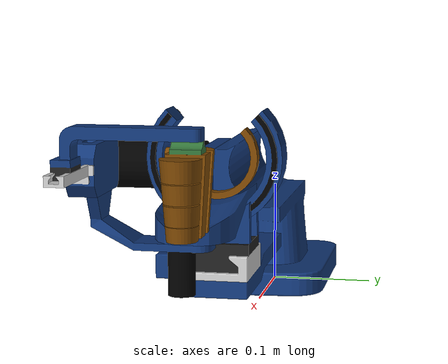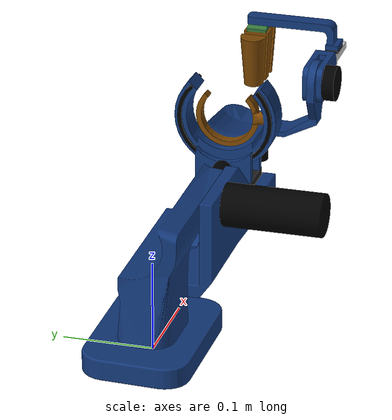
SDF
<?xml version="1.0" ?>
<sdf version="1.6">
	<model name="ForearmRehabSimplified">
		<pose>0.0 0.0 0.0 0.0 0.0 0.0</pose>
		<link name="DummyBase">
			<gravity>false</gravity>
			<self_collide>false</self_collide>
			<pose>0.0 0.0 0.0 0.0 -0.0 0.0</pose>
			<inertial>
				<mass>1.0</mass>
				<inertia>
					<ixx>1.0</ixx>
					<ixy>0.0</ixy>
					<ixz>0.0</ixz>
					<iyy>1.0</iyy>
					<iyz>0.0</iyz>
					<izz>1.0</izz>
				</inertia>
				<pose>0 0 0 0 0 0</pose>
			</inertial>
		</link>
		<link name="BaseLink">
			<gravity>true</gravity>
			<self_collide>true</self_collide>
			<pose>0.0 0.0 0.0 0.0 -0.0 0.0</pose>
			<inertial>
				<mass>1.0</mass>
				<inertia>
					<ixx>1.0</ixx>
					<ixy>0.0</ixy>
					<ixz>0.0</ixz>
					<iyy>1.0</iyy>
					<iyz>0.0</iyz>
					<izz>1.0</izz>
				</inertia>
				<pose>0 0 0 0 0 0</pose>
			</inertial>
			<visual name="VIS_BaseLink">
				<pose>0.0 0.0 0.0 0.0 -0.0 0.0</pose>
				<geometry>
					<mesh>
						<uri>model://ForearmRehabSimplified/meshes/visual/VIS_BaseLink.dae</uri>
						<scale>1.0 1.0 1.0</scale>
					</mesh>
				</geometry>
			</visual>
		</link>
		<link name="ElbowWristLink">
			<gravity>true</gravity>
			<self_collide>true</self_collide>
			<pose>0.09929899871349335 -0.03790295124053955 0.13185299932956696 0.0 -0.0 0.0</pose>
			<inertial>
				<mass>1.0</mass>
				<inertia>
					<ixx>1.0</ixx>
					<ixy>0.0</ixy>
					<ixz>0.0</ixz>
					<iyy>1.0</iyy>
					<iyz>0.0</iyz>
					<izz>1.0</izz>
				</inertia>
				<pose>0 0 0 0 0 0</pose>
			</inertial>
			<visual name="VIS_ElbowWristLink">
				<pose>4.3213367462158203e-07 3.5762786865234375e-07 -1.4901161193847656e-08 0.0 -0.0 0.0</pose>
				<geometry>
					<mesh>
						<uri>model://ForearmRehabSimplified/meshes/visual/VIS_ElbowWristLink.dae</uri>
						<scale>1.0 1.0 1.0</scale>
					</mesh>
				</geometry>
			</visual>
		</link>
		<link name="Prism1MidSlider">
			<gravity>true</gravity>
			<self_collide>true</self_collide>
			<pose>0.2650749981403351 -0.009253978729248047 0.06786900013685226 0.0 -0.0 0.0</pose>
			<inertial>
				<mass>1.0</mass>
				<inertia>
					<ixx>1.0</ixx>
					<ixy>0.0</ixy>
					<ixz>0.0</ixz>
					<iyy>1.0</iyy>
					<iyz>0.0</iyz>
					<izz>1.0</izz>
				</inertia>
				<pose>0 0 0 0 0 0</pose>
			</inertial>
			<visual name="VIS_Prism1MidSlider">
				<pose>-1.1920928955078125e-07 4.470348358154297e-07 6.705522537231445e-08 2.117582368135751e-22 -0.0 3.552713678800501e-15</pose>
				<geometry>
					<mesh>
						<uri>model://ForearmRehabSimplified/meshes/visual/VIS_Prism1MidSlider.dae</uri>
						<scale>1.0 1.0 1.0</scale>
					</mesh>
				</geometry>
			</visual>
		</link>
		<link name="WristLink1">
			<gravity>true</gravity>
			<self_collide>true</self_collide>
			<pose>0.2647170126438141 -0.009253978729248047 0.16250300407409668 0.0 -0.0 0.0</pose>
			<inertial>
				<mass>1.0</mass>
				<inertia>
					<ixx>1.0</ixx>
					<ixy>0.0</ixy>
					<ixz>0.0</ixz>
					<iyy>1.0</iyy>
					<iyz>0.0</iyz>
					<izz>1.0</izz>
				</inertia>
				<pose>0 0 0 0 0 0</pose>
			</inertial>
			<visual name="VIS_WristLink1">
				<pose>-2.9802322387695312e-08 4.3213367462158203e-07 -4.76837158203125e-07 2.117582368135751e-22 -0.0 3.552713678800501e-15</pose>
				<geometry>
					<mesh>
						<uri>model://ForearmRehabSimplified/meshes/visual/VIS_WristLink1.dae</uri>
						<scale>1.0 1.0 1.0</scale>
					</mesh>
				</geometry>
			</visual>
		</link>
		<link name="WristLink2">
			<gravity>true</gravity>
			<self_collide>true</self_collide>
			<pose>0.36778801679611206 -0.016865015029907227 0.10667700320482254 0.0 -0.0 0.0</pose>
			<inertial>
				<mass>1.0</mass>
				<inertia>
					<ixx>1.0</ixx>
					<ixy>0.0</ixy>
					<ixz>0.0</ixz>
					<iyy>1.0</iyy>
					<iyz>0.0</iyz>
					<izz>1.0</izz>
				</inertia>
				<pose>0 0 0 0 0 0</pose>
			</inertial>
			<visual name="VIS_WristLink2">
				<pose>-2.9802322387695312e-08 2.682209014892578e-07 5.21540641784668e-08 2.117582368135751e-22 -0.0 3.552713678800501e-15</pose>
				<geometry>
					<mesh>
						<uri>model://ForearmRehabSimplified/meshes/visual/VIS_WristLink2.dae</uri>
						<scale>1.0 1.0 1.0</scale>
					</mesh>
				</geometry>
			</visual>
		</link>
		<link name="HandLink">
			<gravity>true</gravity>
			<self_collide>true</self_collide>
			<pose>0.3686010241508484 -0.08284497261047363 0.1690009981393814 0.0 -0.0 0.0</pose>
			<inertial>
				<mass>1.0</mass>
				<inertia>
					<ixx>1.0</ixx>
					<ixy>0.0</ixy>
					<ixz>0.0</ixz>
					<iyy>1.0</iyy>
					<iyz>0.0</iyz>
					<izz>1.0</izz>
				</inertia>
				<pose>0 0 0 0 0 0</pose>
			</inertial>
			<visual name="VIS_HandLink">
				<pose>2.9802322387695312e-08 -2.682209014892578e-07 1.6391277313232422e-07 -1.2621775988168958e-29 -0.0 2.117582368135751e-22</pose>
				<geometry>
					<mesh>
						<uri>model://ForearmRehabSimplified/meshes/visual/VIS_HandLink.dae</uri>
						<scale>1.1748089790344238 1.0 1.6057640314102173</scale>
					</mesh>
				</geometry>
			</visual>
		</link>
		<link name="Prism2MidSlider">
			<gravity>true</gravity>
			<self_collide>true</self_collide>
			<pose>0.45214101672172546 -0.08284497261047363 0.1690009981393814 0.0 -0.0 0.0</pose>
			<inertial>
				<mass>1.0</mass>
				<inertia>
					<ixx>1.0</ixx>
					<ixy>0.0</ixy>
					<ixz>0.0</ixz>
					<iyy>1.0</iyy>
					<iyz>0.0</iyz>
					<izz>1.0</izz>
				</inertia>
				<pose>0 0 0 0 0 0</pose>
			</inertial>
			<visual name="VIS_Prism2MidSlider">
				<pose>3.5762786865234375e-07 -2.682209014892578e-07 -7.450580596923828e-08 0.0 -0.0 0.0</pose>
				<geometry>
					<mesh>
						<uri>model://ForearmRehabSimplified/meshes/visual/VIS_Prism2MidSlider.dae</uri>
						<scale>1.0 1.0 1.0</scale>
					</mesh>
				</geometry>
			</visual>
		</link>
		<link name="HandInterface">
			<gravity>true</gravity>
			<self_collide>true</self_collide>
			<pose>0.452210009098053 0.007309019565582275 0.15981200337409973 0.0 -0.0 0.0</pose>
			<inertial>
				<mass>1.0</mass>
				<inertia>
					<ixx>1.0</ixx>
					<ixy>0.0</ixy>
					<ixz>0.0</ixz>
					<iyy>1.0</iyy>
					<iyz>0.0</iyz>
					<izz>1.0</izz>
				</inertia>
				<pose>0 0 0 0 0 0</pose>
			</inertial>
			<visual name="VIS_HandInterface">
				<pose>-8.940696716308594e-08 -6.92903995513916e-07 -5.364418029785156e-07 0.0 -0.0 0.0</pose>
				<geometry>
					<mesh>
						<uri>model://ForearmRehabSimplified/meshes/visual/VIS_HandInterface.dae</uri>
						<scale>1.0 1.0 1.0</scale>
					</mesh>
				</geometry>
			</visual>
		</link>
		<joint name="BaseLink_joint" type="fixed">
			<parent>DummyBase</parent>
			<child>BaseLink</child>
			<axis>
				<xyz>0.0 0.0 1.0</xyz>
				<dynamics>
					<damping>0.0</damping>
					<friction>0.0</friction>
					<spring_reference>0.0</spring_reference>
					<spring_stiffness>0.0</spring_stiffness>
				</dynamics>
			</axis>
			<physics>
				<ode>
					<cfm_damping>false</cfm_damping>
					<implicit_spring_damper>false</implicit_spring_damper>
					<cfm>0.0</cfm>
					<erp>0.20000000298023224</erp>
				</ode>
			</physics>
		</joint>
		<joint name="ElbowWristLink_joint" type="revolute">
			<parent>BaseLink</parent>
			<child>ElbowWristLink</child>
			<axis>
				<xyz>0.0 1.0 0.0</xyz>
				<dynamics>
					<damping>0.0</damping>
					<friction>0.0</friction>
					<spring_reference>0.0</spring_reference>
					<spring_stiffness>0.0</spring_stiffness>
				</dynamics>
				<limit>
					<lower>-1.5707963267948966</lower>
					<upper>0.0</upper>
				</limit>
			</axis>
			<physics>
				<ode>
					<cfm_damping>false</cfm_damping>
					<implicit_spring_damper>false</implicit_spring_damper>
					<cfm>0.0</cfm>
					<erp>0.20000000298023224</erp>
				</ode>
			</physics>
		</joint>
		<joint name="Prism1MidSlider_joint" type="revolute">
			<parent>ElbowWristLink</parent>
			<child>Prism1MidSlider</child>
			<axis>
				<xyz>1.0 0.0 0.0</xyz>
				<dynamics>
					<damping>0.0</damping>
					<friction>0.0</friction>
					<spring_reference>0.0</spring_reference>
					<spring_stiffness>0.0</spring_stiffness>
				</dynamics>
				<limit>
					<lower>-1.7453292079036042e-06</lower>
					<upper>1.7453292079036042e-06</upper>
				</limit>
			</axis>
			<physics>
				<ode>
					<cfm_damping>false</cfm_damping>
					<implicit_spring_damper>false</implicit_spring_damper>
					<cfm>0.0</cfm>
					<erp>0.20000000298023224</erp>
				</ode>
			</physics>
		</joint>
		<joint name="WristLink1_joint" type="revolute">
			<parent>Prism1MidSlider</parent>
			<child>WristLink1</child>
			<axis>
				<xyz>1.0 0.0 0.0</xyz>
				<dynamics>
					<damping>0.0</damping>
					<friction>0.0</friction>
					<spring_reference>0.0</spring_reference>
					<spring_stiffness>0.0</spring_stiffness>
				</dynamics>
				<limit>
					<lower>-1.9198621771937625</lower>
					<upper>1.9198621771937625</upper>
				</limit>
			</axis>
			<physics>
				<ode>
					<cfm_damping>false</cfm_damping>
					<implicit_spring_damper>false</implicit_spring_damper>
					<cfm>0.0</cfm>
					<erp>0.20000000298023224</erp>
				</ode>
			</physics>
		</joint>
		<joint name="WristLink2_joint" type="revolute">
			<parent>WristLink1</parent>
			<child>WristLink2</child>
			<axis>
				<xyz>0.0 0.0 1.0</xyz>
				<dynamics>
					<damping>0.0</damping>
					<friction>0.0</friction>
					<spring_reference>0.0</spring_reference>
					<spring_stiffness>0.0</spring_stiffness>
				</dynamics>
				<limit>
					<lower>-0.9599310885968813</lower>
					<upper>2.0943951023931953</upper>
				</limit>
			</axis>
			<physics>
				<ode>
					<cfm_damping>false</cfm_damping>
					<implicit_spring_damper>false</implicit_spring_damper>
					<cfm>0.0</cfm>
					<erp>0.20000000298023224</erp>
				</ode>
			</physics>
		</joint>
		<joint name="HandLink_joint" type="revolute">
			<parent>WristLink2</parent>
			<child>HandLink</child>
			<axis>
				<xyz>0.0 1.0 0.0</xyz>
				<dynamics>
					<damping>0.0</damping>
					<friction>0.0</friction>
					<spring_reference>0.0</spring_reference>
					<spring_stiffness>0.0</spring_stiffness>
				</dynamics>
				<limit>
					<lower>-1.0471975511965976</lower>
					<upper>0.5235987755982988</upper>
				</limit>
			</axis>
			<physics>
				<ode>
					<cfm_damping>false</cfm_damping>
					<implicit_spring_damper>false</implicit_spring_damper>
					<cfm>0.0</cfm>
					<erp>0.20000000298023224</erp>
				</ode>
			</physics>
		</joint>
		<joint name="Prism2MidSlider_joint" type="revolute">
			<parent>HandLink</parent>
			<child>Prism2MidSlider</child>
			<axis>
				<xyz>1.0 0.0 0.0</xyz>
				<dynamics>
					<damping>0.0</damping>
					<friction>0.0</friction>
					<spring_reference>0.0</spring_reference>
					<spring_stiffness>0.0</spring_stiffness>
				</dynamics>
				<limit>
					<lower>-1.7453292079036042e-06</lower>
					<upper>1.7453292079036042e-06</upper>
				</limit>
			</axis>
			<physics>
				<ode>
					<cfm_damping>false</cfm_damping>
					<implicit_spring_damper>false</implicit_spring_damper>
					<cfm>0.0</cfm>
					<erp>0.20000000298023224</erp>
				</ode>
			</physics>
		</joint>
		<joint name="HandInterface_joint" type="fixed">
			<parent>Prism2MidSlider</parent>
			<child>HandInterface</child>
			<axis>
				<xyz>0.0 0.0 1.0</xyz>
				<dynamics>
					<damping>0.0</damping>
					<friction>0.0</friction>
					<spring_reference>0.0</spring_reference>
					<spring_stiffness>0.0</spring_stiffness>
				</dynamics>
			</axis>
			<physics>
				<ode>
					<cfm_damping>false</cfm_damping>
					<implicit_spring_damper>false</implicit_spring_damper>
					<cfm>0.0</cfm>
					<erp>0.20000000298023224</erp>
				</ode>
			</physics>
		</joint>
	</model>
</sdf>
